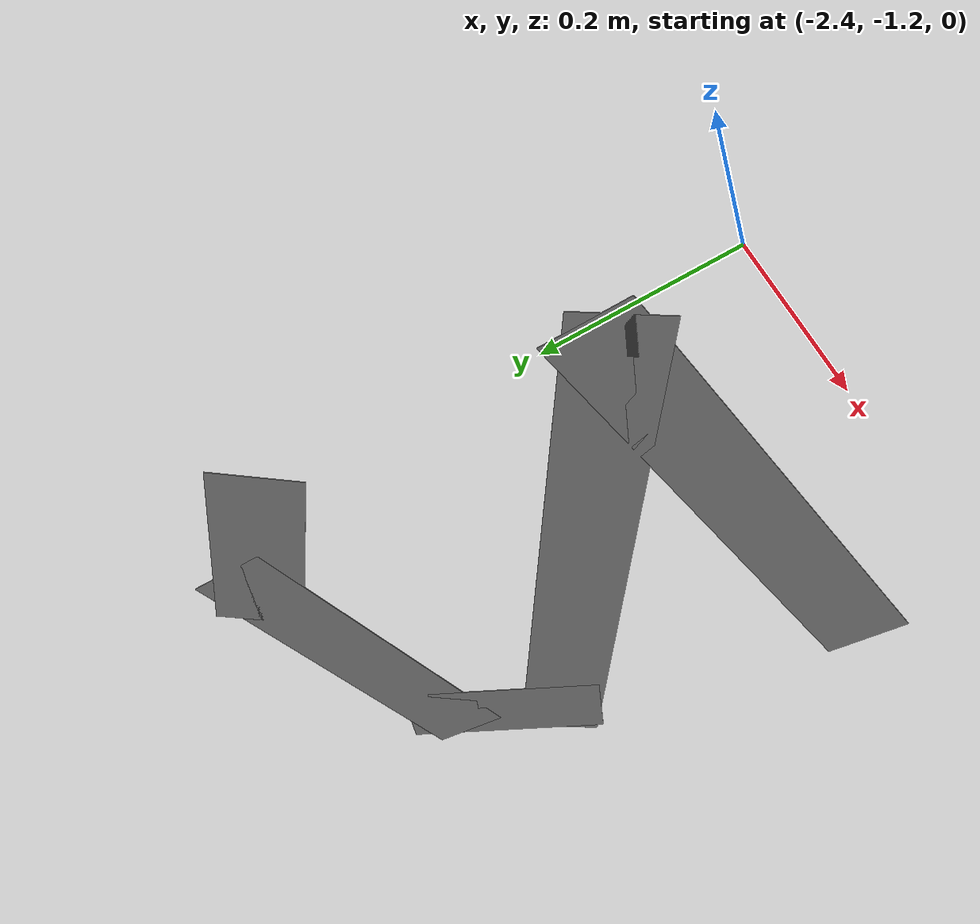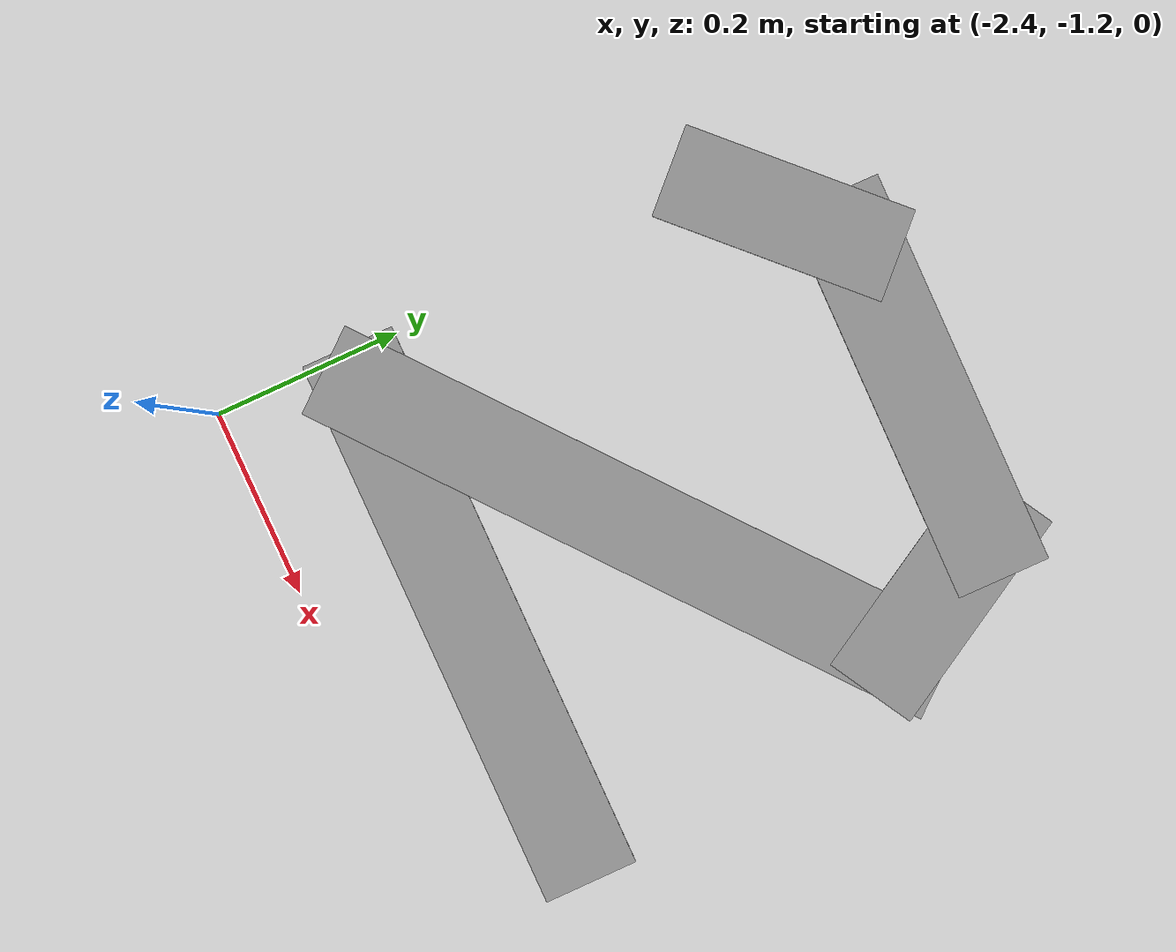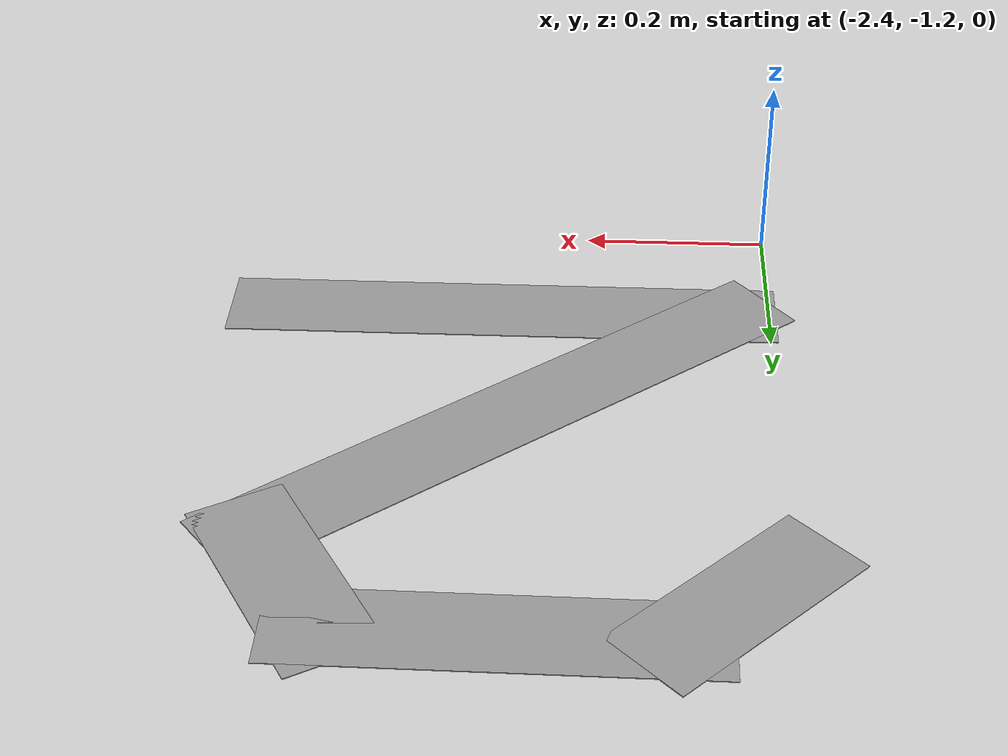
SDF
<?xml version='1.0'?>
<sdf version='1.7'>
  <model name='Two'>
    <pose>-1.23537 -0.561176 0 0 -0 0</pose>
    <link name='Wall_23'>
      <collision name='Wall_23_Collision'>
        <geometry>
          <box>
            <size>0.25 0.1 0.001</size>
          </box>
        </geometry>
        <pose>0 0 0.0005 0 -0 0</pose>
      </collision>
      <visual name='Wall_23_Visual'>
        <pose>0 0 0.0005 0 -0 0</pose>
        <geometry>
          <box>
            <size>0.25 0.1 0.001</size>
          </box>
        </geometry>
        <material>
          <script>
            <uri>file://media/materials/scripts/gazebo.material</uri>
            <name>Gazebo/Grey</name>
          </script>
          <ambient>1 1 1 1</ambient>
        </material>
        <meta>
          <layer>0</layer>
        </meta>
      </visual>
      <pose>-1.11163 -0.028824 0 0 -0 0.785398</pose>
    </link>
    <link name='Wall_24'>
      <collision name='Wall_24_Collision'>
        <geometry>
          <box>
            <size>0.429014 0.1 0.001</size>
          </box>
        </geometry>
        <pose>0 0 0.0005 0 -0 0</pose>
      </collision>
      <visual name='Wall_24_Visual'>
        <pose>0 0 0.0005 0 -0 0</pose>
        <geometry>
          <box>
            <size>0.429014 0.1 0.001</size>
          </box>
        </geometry>
        <material>
          <script>
            <uri>file://media/materials/scripts/gazebo.material</uri>
            <name>Gazebo/Grey</name>
          </script>
          <ambient>1 1 1 1</ambient>
        </material>
        <meta>
          <layer>0</layer>
        </meta>
      </visual>
      <pose>-0.894128 0.022676 0 0 -0 -0.009118</pose>
    </link>
    <link name='Wall_25'>
      <collision name='Wall_25_Collision'>
        <geometry>
          <box>
            <size>0.250017 0.1 0.001</size>
          </box>
        </geometry>
        <pose>0 0 0.0005 0 -0 0</pose>
      </collision>
      <visual name='Wall_25_Visual'>
        <pose>0 0 0.0005 0 -0 0</pose>
        <geometry>
          <box>
            <size>0.250017 0.1 0.001</size>
          </box>
        </geometry>
        <material>
          <script>
            <uri>file://media/materials/scripts/gazebo.material</uri>
            <name>Gazebo/Grey</name>
          </script>
          <ambient>1 1 1 1</ambient>
        </material>
        <meta>
          <layer>0</layer>
        </meta>
      </visual>
      <pose>-0.692128 -0.043824 0 0 -0 -1.04752</pose>
    </link>
    <link name='Wall_26'>
      <collision name='Wall_26_Collision'>
        <geometry>
          <box>
            <size>0.704109 0.1 0.001</size>
          </box>
        </geometry>
        <pose>0 0 0.0005 0 -0 0</pose>
      </collision>
      <visual name='Wall_26_Visual'>
        <pose>0 0 0.0005 0 -0 0</pose>
        <geometry>
          <box>
            <size>0.704109 0.1 0.001</size>
          </box>
        </geometry>
        <material>
          <script>
            <uri>file://media/materials/scripts/gazebo.material</uri>
            <name>Gazebo/Grey</name>
          </script>
          <ambient>1 1 1 1</ambient>
        </material>
        <meta>
          <layer>0</layer>
        </meta>
      </visual>
      <pose>-0.888628 -0.299824 0 0 -0 -2.45703</pose>
    </link>
    <link name='Wall_27'>
      <collision name='Wall_27_Collision'>
        <geometry>
          <box>
            <size>0.6 0.1 0.001</size>
          </box>
        </geometry>
        <pose>0 0 0.0005 0 -0 0</pose>
      </collision>
      <visual name='Wall_27_Visual'>
        <pose>0 0 0.0005 0 -0 0</pose>
        <geometry>
          <box>
            <size>0.6 0.1 0.001</size>
          </box>
        </geometry>
        <material>
          <script>
            <uri>file://media/materials/scripts/gazebo.material</uri>
            <name>Gazebo/Grey</name>
          </script>
          <ambient>1 1 1 1</ambient>
        </material>
        <meta>
          <layer>0</layer>
        </meta>
      </visual>
      <pose>-0.872628 -0.490824 0 0 -0 0</pose>
    </link>
    <static>1</static>
  </model>
</sdf>
